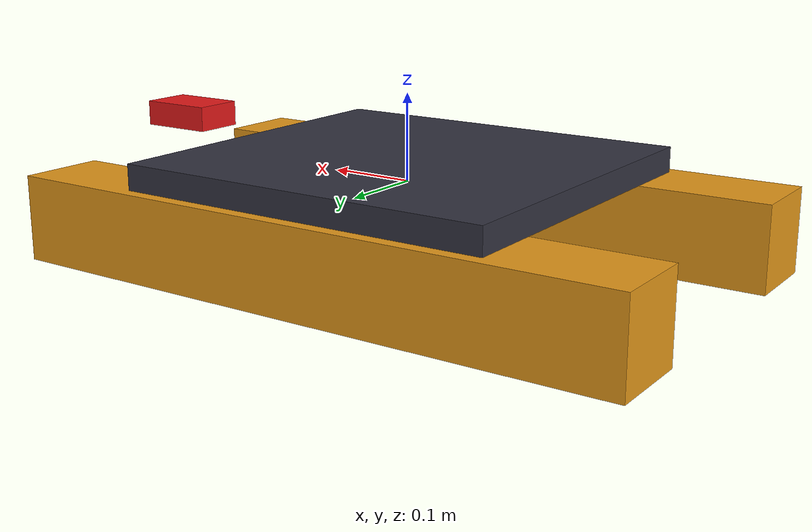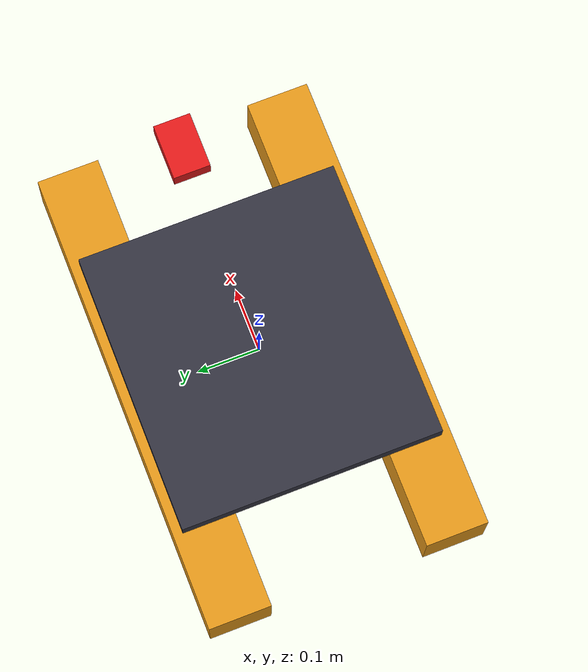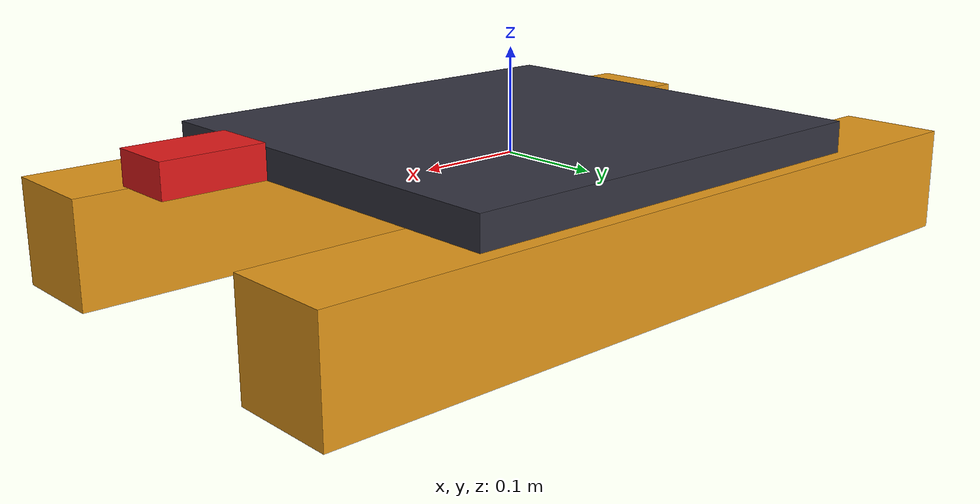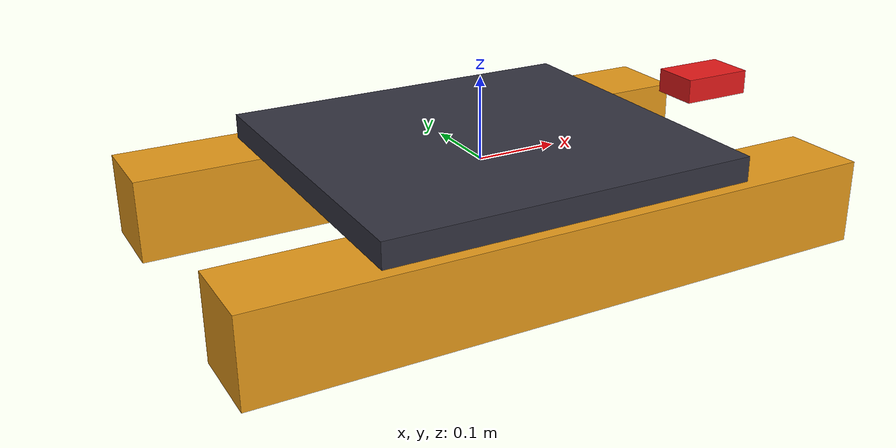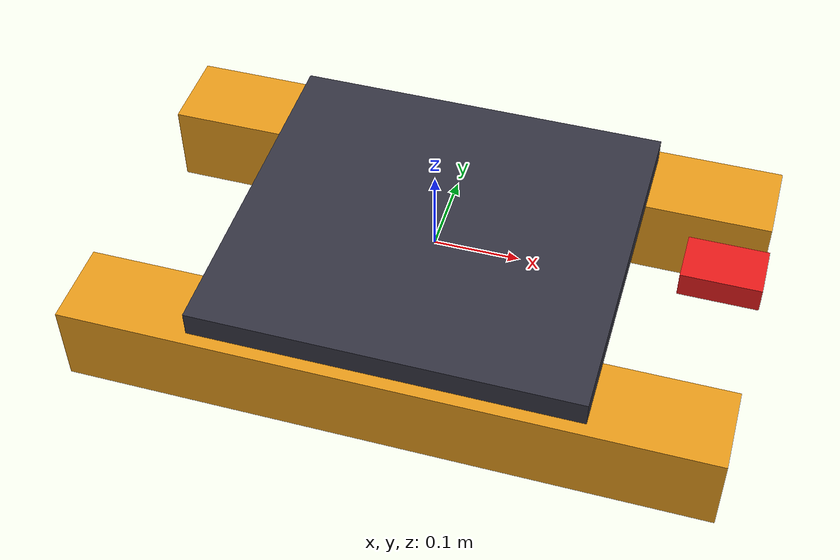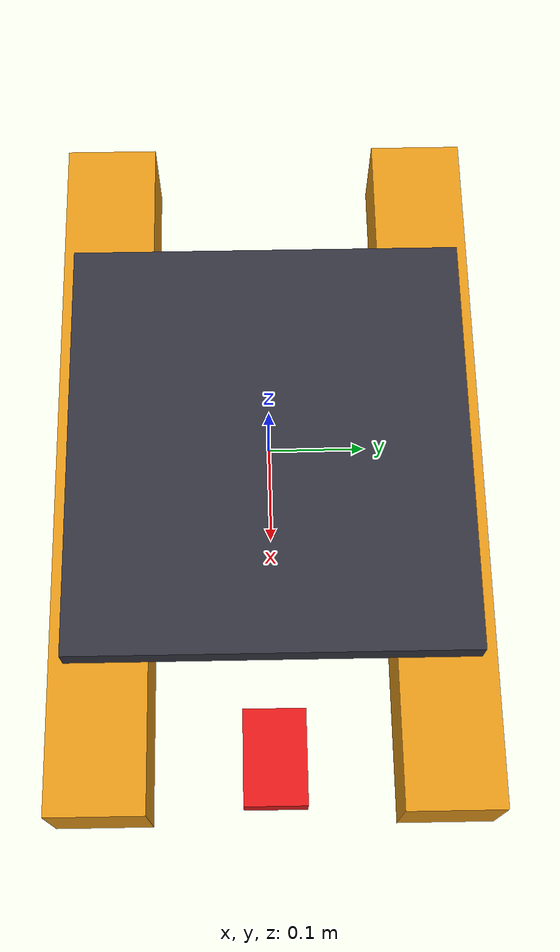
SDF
<?xml version="1.0"?>
<sdf version="1.9">
  <model name="asv_boat">
    <link name="base_link">
      <inertial>
        <mass>5.0</mass>
        <pose>0 0 -0.08 0 0 0</pose>
        <inertia>
          <ixx>0.17</ixx><iyy>0.25</iyy><izz>0.30</izz>
          <ixy>0</ixy><ixz>0</ixz><iyz>0</iyz>
        </inertia>
      </inertial>

      <!-- lambung kiri (port, y+) -->
      <collision name="hull_port">
        <pose>0 0.175 -0.05 0 0 0</pose>
        <geometry><box><size>0.75 0.10 0.10</size></box></geometry>
      </collision>
      <visual name="hull_port_v">
        <pose>0 0.175 -0.05 0 0 0</pose>
        <geometry><box><size>0.75 0.10 0.10</size></box></geometry>
        <material><ambient>0.9 0.6 0.1 1</ambient><diffuse>0.9 0.6 0.1 1</diffuse></material>
      </visual>

      <!-- lambung kanan (starboard, y-) -->
      <collision name="hull_stbd">
        <pose>0 -0.175 -0.05 0 0 0</pose>
        <geometry><box><size>0.75 0.10 0.10</size></box></geometry>
      </collision>
      <visual name="hull_stbd_v">
        <pose>0 -0.175 -0.05 0 0 0</pose>
        <geometry><box><size>0.75 0.10 0.10</size></box></geometry>
        <material><ambient>0.9 0.6 0.1 1</ambient><diffuse>0.9 0.6 0.1 1</diffuse></material>
      </visual>

      <!-- dek penghubung (visual saja, massa sudah di inertial) -->
      <visual name="deck_v">
        <pose>0 0 0.015 0 0 0</pose>
        <geometry><box><size>0.45 0.42 0.03</size></box></geometry>
        <material><ambient>0.2 0.2 0.25 1</ambient><diffuse>0.2 0.2 0.25 1</diffuse></material>
      </visual>
      <!-- penanda haluan agar arah terlihat -->
      <visual name="bow_v">
        <pose>0.33 0 0.045 0 0 0</pose>
        <geometry><box><size>0.09 0.06 0.03</size></box></geometry>
        <material><ambient>0.9 0.1 0.1 1</ambient><diffuse>0.9 0.1 0.1 1</diffuse></material>
      </visual>
    </link>

    <!-- propeler kiri: silinder kecil di buritan lambung kiri, sumbu x (maju) -->
    <link name="left_prop">
      <pose>-0.36 0.20 -0.07 0 1.5707963 0</pose>
      <inertial>
        <mass>0.02</mass>
        <inertia><ixx>1e-5</ixx><iyy>1e-5</iyy><izz>1e-5</izz>
                 <ixy>0</ixy><ixz>0</ixz><iyz>0</iyz></inertia>
      </inertial>
      <visual name="v">
        <geometry><cylinder><radius>0.025</radius><length>0.02</length></cylinder></geometry>
        <material><ambient>0.1 0.1 0.1 1</ambient><diffuse>0.1 0.1 0.1 1</diffuse></material>
      </visual>
    </link>
    <joint name="left_prop_joint" type="revolute">
      <parent>base_link</parent>
      <child>left_prop</child>
      <axis>
        <xyz>1 0 0</xyz>
        <limit><lower>-1e16</lower><upper>1e16</upper></limit>
      </axis>
      <pose>0 0 0 0 -1.5707963 0</pose>
    </joint>

    <!-- propeler kanan -->
    <link name="right_prop">
      <pose>-0.36 -0.20 -0.07 0 1.5707963 0</pose>
      <inertial>
        <mass>0.02</mass>
        <inertia><ixx>1e-5</ixx><iyy>1e-5</iyy><izz>1e-5</izz>
                 <ixy>0</ixy><ixz>0</ixz><iyz>0</iyz></inertia>
      </inertial>
      <visual name="v">
        <geometry><cylinder><radius>0.025</radius><length>0.02</length></cylinder></geometry>
        <material><ambient>0.1 0.1 0.1 1</ambient><diffuse>0.1 0.1 0.1 1</diffuse></material>
      </visual>
    </link>
    <joint name="right_prop_joint" type="revolute">
      <parent>base_link</parent>
      <child>right_prop</child>
      <axis>
        <xyz>1 0 0</xyz>
        <limit><lower>-1e16</lower><upper>1e16</upper></limit>
      </axis>
      <pose>0 0 0 0 -1.5707963 0</pose>
    </joint>

    <!-- Thruster bawaan Gazebo: gaya sepanjang sumbu joint pada link propeler.
         Topic: /model/asv_boat/joint/{left,right}_prop_joint/cmd_thrust (N). -->
    <plugin filename="ignition-gazebo-thruster-system"
            name="ignition::gazebo::systems::Thruster">
      <namespace>asv_boat</namespace>
      <joint_name>left_prop_joint</joint_name>
      <fluid_density>1000</fluid_density>
      <propeller_diameter>0.05</propeller_diameter>
      <thrust_coefficient>0.02</thrust_coefficient>
      <velocity_control>true</velocity_control>
    </plugin>
    <plugin filename="ignition-gazebo-thruster-system"
            name="ignition::gazebo::systems::Thruster">
      <namespace>asv_boat</namespace>
      <joint_name>right_prop_joint</joint_name>
      <fluid_density>1000</fluid_density>
      <propeller_diameter>0.05</propeller_diameter>
      <thrust_coefficient>0.02</thrust_coefficient>
      <velocity_control>true</velocity_control>
    </plugin>

    <plugin filename="ignition-gazebo-hydrodynamics-system"
            name="ignition::gazebo::systems::Hydrodynamics">
      <link_name>base_link</link_name>
      <water_density>1000</water_density>
      <xDotU>0</xDotU>
      <yDotV>0</yDotV>
      <zDotW>0</zDotW>
      <kDotP>0</kDotP>
      <mDotQ>0</mDotQ>
      <nDotR>0</nDotR>
      <xUabsU>-6.0</xUabsU>
      <yVabsV>-60.0</yVabsV>
      <zWabsW>-50.0</zWabsW>
      <kPabsP>-5.0</kPabsP>
      <mQabsQ>-8.0</mQabsQ>
      <nRabsR>-0.55</nRabsR>
    </plugin>

    <!-- Jembatan ArduPilot SITL (JSON) — lihat plugin/AsvJsonBridge.cc -->
    <plugin filename="AsvJsonBridge" name="asv::AsvJsonBridge">
      <link_name>base_link</link_name>
      <port>9002</port>
      <servo_left_index>0</servo_left_index>   <!-- SERVO1 = ThrottleLeft  -->
      <servo_right_index>2</servo_right_index> <!-- SERVO3 = ThrottleRight -->
      <max_thrust>7.0</max_thrust>             <!-- N per motor pada PWM penuh -->
      <pwm_trim>1500</pwm_trim>
      <pwm_range>400</pwm_range>
      <pwm_deadband>20</pwm_deadband>
      <left_joint>left_prop_joint</left_joint>
      <right_joint>right_prop_joint</right_joint>
      <!-- arus air konstan (N, kerangka dunia ENU; x=Timur, y=Utara) -->
      <current_force_x>0.0</current_force_x>
      <current_force_y>0.0</current_force_y>
      <!-- hidrostatika 8 titik (dimensi harus cocok dengan geometri lambung) -->
      <hydrostatics>true</hydrostatics>
      <hull_length>0.75</hull_length>
      <hull_width>0.10</hull_width>
      <hull_height>0.10</hull_height>
      <hull_offset_y>0.175</hull_offset_y>
      <hull_top_z>0.0</hull_top_z>
      <water_level>0.0</water_level>
      <heave_damping_per_point>15.0</heave_damping_per_point>
    </plugin>
  </model>
</sdf>
